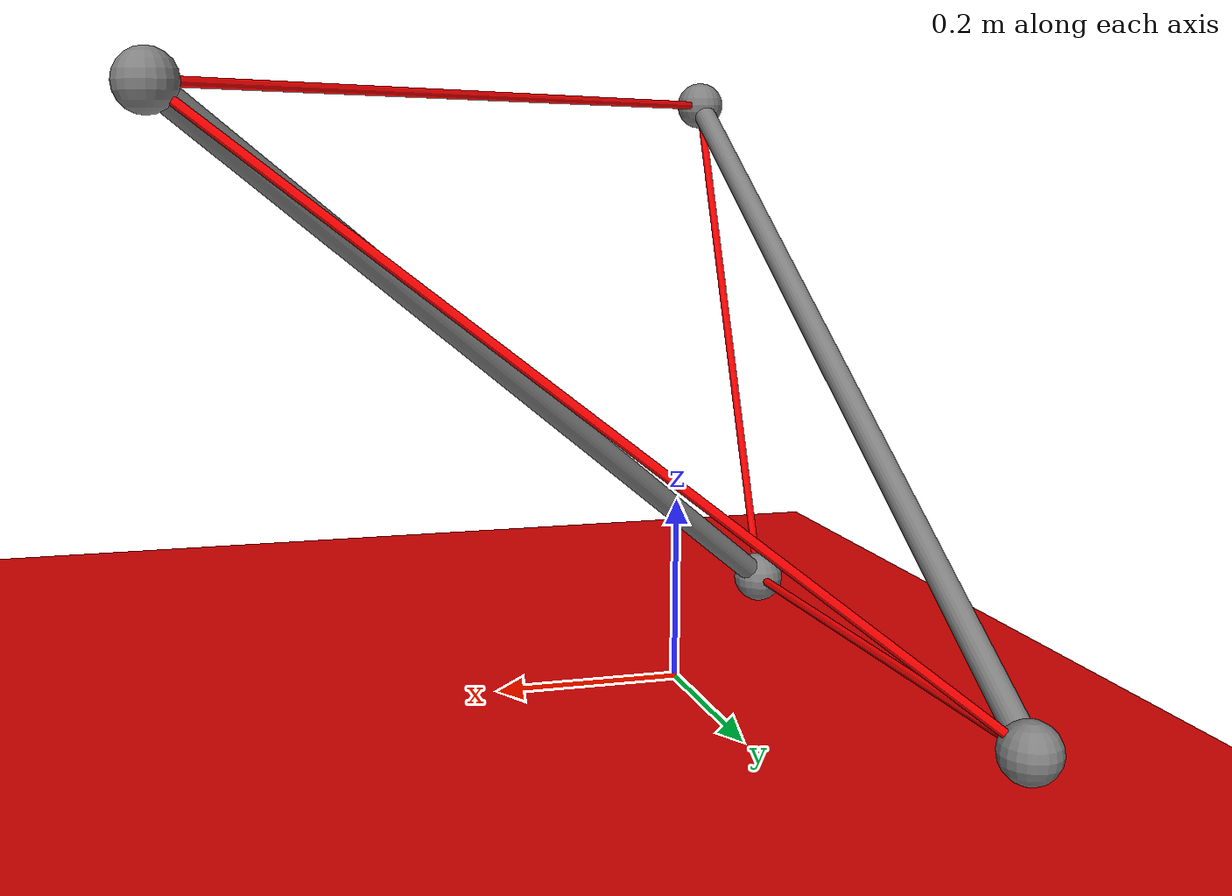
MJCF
<mujoco>
   <option timestep="0.01" />
   <default>
 		  <site type="sphere" size="0.005"/>
      <tendon limited="true" range="0.1 0.8" width="0.005" rgba="0.99 0. 0. 1"  stiffness="1" damping="0.5"/>

 	 </default>
   <worldbody>
      <light diffuse=".5 .5 .5" pos="0 0 3" dir="0 0 -1"/>

      <geom type="plane" size="1 1 0.1" rgba=".9 0 0 1"/>

      <body name="rod0_1" pos="0 0 0">
        <geom name="r01"  fromto="0.554168  0.181788  0.638605 -0.191882  -0.227347  0.0405941"  density="1000" type="cylinder" size="0.014" />
        <joint name="move0_1" type="free"/>
  			<body name="rod0_1_child1">
  				<geom name="r01_child1" pos="0.554168  0.181788  0.638605" density="5000" mass="5" type="sphere"  size="0.03" friction="10 0.005 0.0001"/>
  				<site name="s0" pos="0.554168  0.181788  0.638605"/>
  				<joint type="ball" pos="0.554168  0.181788  0.638605"/>
  			</body>
  			<body name="rod0_1_child2">
  				<geom name="r01_child2" pos="-0.191882  -0.227347  0.0405941" density="5000" mass="5" type="sphere"  size="0.03" friction="10 0.005 0.0001"/>
  				<site name="s1" pos="-0.191882  -0.227347  0.0405941" />
  				<joint type="ball" pos="-0.191882  -0.227347  0.0405941"/>
  			</body>
  		</body>
      <body name="rod2_3" pos="0 0 0">
          <geom name="r23"  fromto="-0.186509 -0.448923  0.63765 -0.186517  0.409422 0.050415" density="1000" type="cylinder"  size="0.014"/>
          <joint name="move2_3" type="free"/>
  				<body name="rod2_3_child1">
  					<geom name="r23_child1" pos="-0.186509 -0.448923  0.63765" density="5000" mass="5" type="sphere"  size="0.03" friction="10 0.005 0.0001"/>
          	<site name="s2" pos="-0.186509 -0.448923  0.63765"/>
  					<joint type="ball" pos="-0.186509 -0.448923  0.63765"/>
  				</body>
  				<body name="rod2_3_child2">
  					<geom name="r23_child2" pos="-0.186517  0.409422  0.050415" density="5000" mass="5" type="sphere"  size="0.03" friction="10 0.005 0.0001"/>
  					<site name="s3" pos="-0.186517  0.409422  0.050415" />
  					<joint type="ball" pos="-0.186517  0.409422  0.050415"/>
  				</body>
      </body>

   </worldbody>
   <tendon>
         <spatial name="td_0">
             <site site="s0"/>
             <site site="s2"/>
         </spatial>
         <spatial  name="td_1">
             <site site="s0"/>
             <site site="s3"/>
         </spatial>
         <spatial  name="td_2">
             <site site="s1"/>
             <site site="s2"/>
         </spatial>
         <spatial  name="td_3">
             <site site="s1"/>
             <site site="s3"/>
         </spatial>
     </tendon>
    <sensor>
        <accelerometer name="accel" site="s1" />
        <velocimeter name="velo" site="s1" />
    </sensor>

</mujoco>
